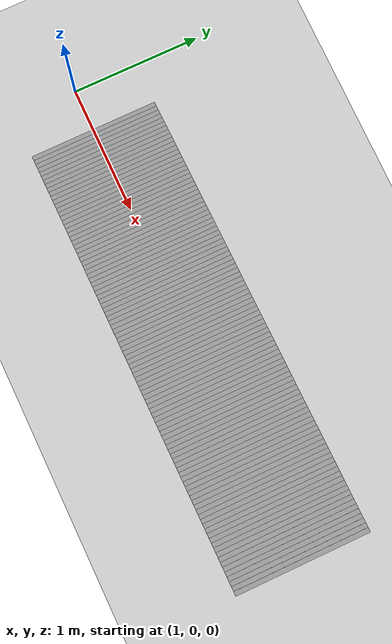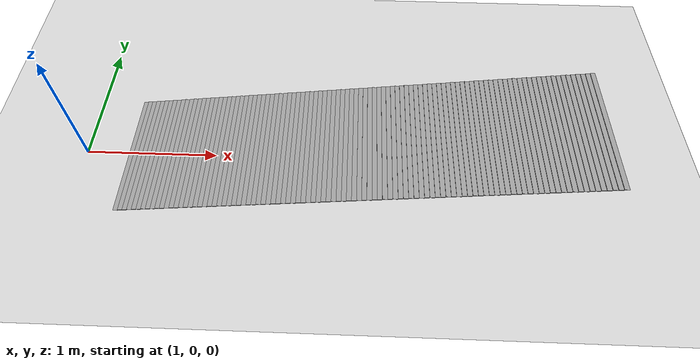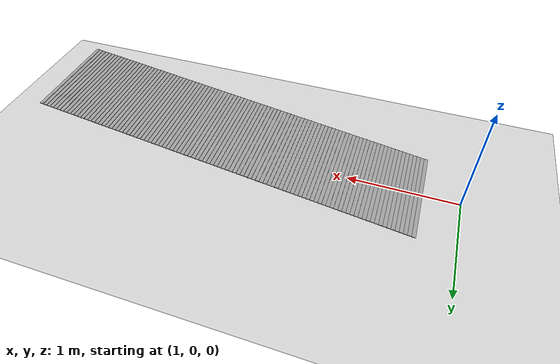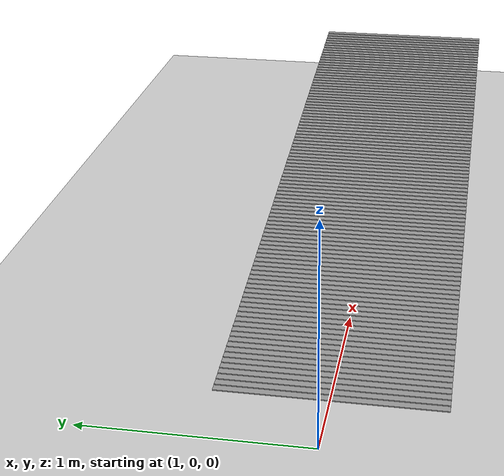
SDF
<sdf version="1.7">
 <world name="default">
  <light name="sun" type="directional">
   <pose>0 0 10 0 -0 0</pose>
   <diffuse>0.8 0.8 0.8 1</diffuse>
   <specular>0.2 0.2 0.2 1</specular>
   <attenuation>
    <range>1000</range>
    <constant>0.9</constant>
    <linear>0.01</linear>
    <quadratic>0.001</quadratic>
   </attenuation>
   <direction>-0.5 0.1 -0.9</direction>
   <spot><inner_angle>0</inner_angle><outer_angle>0</outer_angle><falloff>0</falloff></spot>
  </light>
  <model name="ground_plane">
   <static>1</static>
   <link name="link">
    <collision name="collision">
     <geometry><plane><normal>0 0 1</normal><size>100 100</size></plane></geometry>
     <surface><friction><ode><mu>100</mu><mu2>50</mu2></ode></friction></surface>
    </collision>
    <visual name="visual">
     <cast_shadows>0</cast_shadows>
     <geometry><plane><normal>0 0 1</normal><size>100 100</size></plane></geometry>
     <material>
      <script><uri>file://media/materials/scripts/gazebo.material</uri><name>Gazebo/Grey</name></script>
     </material>
    </visual>
   </link>
  </model>
  <gravity>0 0 -9.8</gravity>
  <magnetic_field>6e-06 2.3e-05 -4.2e-05</magnetic_field>
  <atmosphere type="adiabatic"/>
  <physics type="ode">
   <max_step_size>0.001</max_step_size>
   <real_time_factor>1</real_time_factor>
   <real_time_update_rate>1000</real_time_update_rate>
  </physics>
  <scene><ambient>0.4 0.4 0.4 1</ambient><background>0.7 0.7 0.7 1</background><shadows>1</shadows></scene>
  <audio><device>default</device></audio>
  <spherical_coordinates>
   <surface_model>EARTH_WGS84</surface_model>
   <latitude_deg>0</latitude_deg>
   <longitude_deg>0</longitude_deg>
   <elevation>0</elevation>
   <heading_deg>0</heading_deg>
  </spherical_coordinates>
  <model name="stair">
   <pose>2.41167 0.002545 0 0 -0 0</pose>
   <link name="Stairs_1">
    <visual name="Stairs_1_Visual_0">
     <pose>-1.07082 -0 0.0025 0 -0 1.5708</pose>
     <geometry><box><size>1 0.035 0.005</size></box></geometry>
     <material>
      <script><uri>file://media/materials/scripts/gazebo.material</uri><name>Gazebo/Grey</name></script>
      <ambient>1 1 1 1</ambient>
     </material>
     <meta><layer>0</layer></meta>
    </visual>
    <collision name="Stairs_1_Collision_0">
     <geometry><box><size>1 0.035 0.005</size></box></geometry>
     <pose>-1.07082 -0 0.0025 0 -0 1.5708</pose>
    </collision>
    <visual name="Stairs_1_Visual_1">
     <pose>-1.03582 -0 0.0075 0 -0 1.5708</pose>
     <geometry><box><size>1 0.035 0.005</size></box></geometry>
     <material>
      <script><uri>file://media/materials/scripts/gazebo.material</uri><name>Gazebo/Grey</name></script>
      <ambient>1 1 1 1</ambient>
     </material>
     <meta><layer>0</layer></meta>
    </visual>
    <collision name="Stairs_1_Collision_1">
     <geometry><box><size>1 0.035 0.005</size></box></geometry>
     <pose>-1.03582 -0 0.0075 0 -0 1.5708</pose>
    </collision>
    <visual name="Stairs_1_Visual_2">
     <pose>-1.00083 -0 0.0125 0 -0 1.5708</pose>
     <geometry><box><size>1 0.035 0.005</size></box></geometry>
     <material>
      <script><uri>file://media/materials/scripts/gazebo.material</uri><name>Gazebo/Grey</name></script>
      <ambient>1 1 1 1</ambient>
     </material>
     <meta><layer>0</layer></meta>
    </visual>
    <collision name="Stairs_1_Collision_2">
     <geometry><box><size>1 0.035 0.005</size></box></geometry>
     <pose>-1.00083 -0 0.0125 0 -0 1.5708</pose>
    </collision>
    <visual name="Stairs_1_Visual_3">
     <pose>-0.965825 -0 0.0175 0 -0 1.5708</pose>
     <geometry><box><size>1 0.035 0.005</size></box></geometry>
     <material>
      <script><uri>file://media/materials/scripts/gazebo.material</uri><name>Gazebo/Grey</name></script>
      <ambient>1 1 1 1</ambient>
     </material>
     <meta><layer>0</layer></meta>
    </visual>
    <collision name="Stairs_1_Collision_3">
     <geometry><box><size>1 0.035 0.005</size></box></geometry>
     <pose>-0.965825 -0 0.0175 0 -0 1.5708</pose>
    </collision>
    <visual name="Stairs_1_Visual_4">
     <pose>-0.930825 -0 0.0225 0 -0 1.5708</pose>
     <geometry><box><size>1 0.035 0.005</size></box></geometry>
     <material>
      <script><uri>file://media/materials/scripts/gazebo.material</uri><name>Gazebo/Grey</name></script>
      <ambient>1 1 1 1</ambient>
     </material>
     <meta><layer>0</layer></meta>
    </visual>
    <collision name="Stairs_1_Collision_4">
     <geometry><box><size>1 0.035 0.005</size></box></geometry>
     <pose>-0.930825 -0 0.0225 0 -0 1.5708</pose>
    </collision>
    <visual name="Stairs_1_Visual_5">
     <pose>-0.895825 -0 0.0275 0 -0 1.5708</pose>
     <geometry><box><size>1 0.035 0.005</size></box></geometry>
     <material>
      <script><uri>file://media/materials/scripts/gazebo.material</uri><name>Gazebo/Grey</name></script>
      <ambient>1 1 1 1</ambient>
     </material>
     <meta><layer>0</layer></meta>
    </visual>
    <collision name="Stairs_1_Collision_5">
     <geometry><box><size>1 0.035 0.005</size></box></geometry>
     <pose>-0.895825 -0 0.0275 0 -0 1.5708</pose>
    </collision>
    <visual name="Stairs_1_Visual_6">
     <pose>-0.860825 -0 0.0325 0 -0 1.5708</pose>
     <geometry><box><size>1 0.035 0.005</size></box></geometry>
     <material>
      <script><uri>file://media/materials/scripts/gazebo.material</uri><name>Gazebo/Grey</name></script>
      <ambient>1 1 1 1</ambient>
     </material>
     <meta><layer>0</layer></meta>
    </visual>
    <collision name="Stairs_1_Collision_6">
     <geometry><box><size>1 0.035 0.005</size></box></geometry>
     <pose>-0.860825 -0 0.0325 0 -0 1.5708</pose>
    </collision>
    <visual name="Stairs_1_Visual_7">
     <pose>-0.825825 -0 0.0375 0 -0 1.5708</pose>
     <geometry><box><size>1 0.035 0.005</size></box></geometry>
     <material>
      <script><uri>file://media/materials/scripts/gazebo.material</uri><name>Gazebo/Grey</name></script>
      <ambient>1 1 1 1</ambient>
     </material>
     <meta><layer>0</layer></meta>
    </visual>
    <collision name="Stairs_1_Collision_7">
     <geometry><box><size>1 0.035 0.005</size></box></geometry>
     <pose>-0.825825 -0 0.0375 0 -0 1.5708</pose>
    </collision>
    <visual name="Stairs_1_Visual_8">
     <pose>-0.790825 -0 0.0425 0 -0 1.5708</pose>
     <geometry><box><size>1 0.035 0.005</size></box></geometry>
     <material>
      <script><uri>file://media/materials/scripts/gazebo.material</uri><name>Gazebo/Grey</name></script>
      <ambient>1 1 1 1</ambient>
     </material>
     <meta><layer>0</layer></meta>
    </visual>
    <collision name="Stairs_1_Collision_8">
     <geometry><box><size>1 0.035 0.005</size></box></geometry>
     <pose>-0.790825 -0 0.0425 0 -0 1.5708</pose>
    </collision>
    <visual name="Stairs_1_Visual_9">
     <pose>-0.755825 -0 0.0475 0 -0 1.5708</pose>
     <geometry><box><size>1 0.035 0.005</size></box></geometry>
     <material>
      <script><uri>file://media/materials/scripts/gazebo.material</uri><name>Gazebo/Grey</name></script>
      <ambient>1 1 1 1</ambient>
     </material>
     <meta><layer>0</layer></meta>
    </visual>
    <collision name="Stairs_1_Collision_9">
     <geometry><box><size>1 0.035 0.005</size></box></geometry>
     <pose>-0.755825 -0 0.0475 0 -0 1.5708</pose>
    </collision>
    <visual name="Stairs_1_Visual_10">
     <pose>-0.720825 -0 0.0525 0 -0 1.5708</pose>
     <geometry><box><size>1 0.035 0.005</size></box></geometry>
     <material>
      <script><uri>file://media/materials/scripts/gazebo.material</uri><name>Gazebo/Grey</name></script>
      <ambient>1 1 1 1</ambient>
     </material>
     <meta><layer>0</layer></meta>
    </visual>
    <collision name="Stairs_1_Collision_10">
     <geometry><box><size>1 0.035 0.005</size></box></geometry>
     <pose>-0.720825 -0 0.0525 0 -0 1.5708</pose>
    </collision>
    <visual name="Stairs_1_Visual_11">
     <pose>-0.685825 -0 0.0575 0 -0 1.5708</pose>
     <geometry><box><size>1 0.035 0.005</size></box></geometry>
     <material>
      <script><uri>file://media/materials/scripts/gazebo.material</uri><name>Gazebo/Grey</name></script>
      <ambient>1 1 1 1</ambient>
     </material>
     <meta><layer>0</layer></meta>
    </visual>
    <collision name="Stairs_1_Collision_11">
     <geometry><box><size>1 0.035 0.005</size></box></geometry>
     <pose>-0.685825 -0 0.0575 0 -0 1.5708</pose>
    </collision>
    <visual name="Stairs_1_Visual_12">
     <pose>-0.650825 -0 0.0625 0 -0 1.5708</pose>
     <geometry><box><size>1 0.035 0.005</size></box></geometry>
     <material>
      <script><uri>file://media/materials/scripts/gazebo.material</uri><name>Gazebo/Grey</name></script>
      <ambient>1 1 1 1</ambient>
     </material>
     <meta><layer>0</layer></meta>
    </visual>
    <collision name="Stairs_1_Collision_12">
     <geometry><box><size>1 0.035 0.005</size></box></geometry>
     <pose>-0.650825 -0 0.0625 0 -0 1.5708</pose>
    </collision>
    <visual name="Stairs_1_Visual_13">
     <pose>-0.615825 -0 0.0675 0 -0 1.5708</pose>
     <geometry><box><size>1 0.035 0.005</size></box></geometry>
     <material>
      <script><uri>file://media/materials/scripts/gazebo.material</uri><name>Gazebo/Grey</name></script>
      <ambient>1 1 1 1</ambient>
     </material>
     <meta><layer>0</layer></meta>
    </visual>
    <collision name="Stairs_1_Collision_13">
     <geometry><box><size>1 0.035 0.005</size></box></geometry>
     <pose>-0.615825 -0 0.0675 0 -0 1.5708</pose>
    </collision>
    <visual name="Stairs_1_Visual_14">
     <pose>-0.580825 -0 0.0725 0 -0 1.5708</pose>
     <geometry><box><size>1 0.035 0.005</size></box></geometry>
     <material>
      <script><uri>file://media/materials/scripts/gazebo.material</uri><name>Gazebo/Grey</name></script>
      <ambient>1 1 1 1</ambient>
     </material>
     <meta><layer>0</layer></meta>
    </visual>
    <collision name="Stairs_1_Collision_14">
     <geometry><box><size>1 0.035 0.005</size></box></geometry>
     <pose>-0.580825 -0 0.0725 0 -0 1.5708</pose>
    </collision>
    <visual name="Stairs_1_Visual_15">
     <pose>-0.545825 -0 0.0775 0 -0 1.5708</pose>
     <geometry><box><size>1 0.035 0.005</size></box></geometry>
     <material>
      <script><uri>file://media/materials/scripts/gazebo.material</uri><name>Gazebo/Grey</name></script>
      <ambient>1 1 1 1</ambient>
     </material>
     <meta><layer>0</layer></meta>
    </visual>
    <collision name="Stairs_1_Collision_15">
     <geometry><box><size>1 0.035 0.005</size></box></geometry>
     <pose>-0.545825 -0 0.0775 0 -0 1.5708</pose>
    </collision>
    <visual name="Stairs_1_Visual_16">
     <pose>-0.510825 -0 0.0825 0 -0 1.5708</pose>
     <geometry><box><size>1 0.035 0.005</size></box></geometry>
     <material>
      <script><uri>file://media/materials/scripts/gazebo.material</uri><name>Gazebo/Grey</name></script>
      <ambient>1 1 1 1</ambient>
     </material>
     <meta><layer>0</layer></meta>
    </visual>
    <collision name="Stairs_1_Collision_16">
     <geometry><box><size>1 0.035 0.005</size></box></geometry>
     <pose>-0.510825 -0 0.0825 0 -0 1.5708</pose>
    </collision>
    <visual name="Stairs_1_Visual_17">
     <pose>-0.475825 -0 0.0875 0 -0 1.5708</pose>
     <geometry><box><size>1 0.035 0.005</size></box></geometry>
     <material>
      <script><uri>file://media/materials/scripts/gazebo.material</uri><name>Gazebo/Grey</name></script>
      <ambient>1 1 1 1</ambient>
     </material>
     <meta><layer>0</layer></meta>
    </visual>
    <collision name="Stairs_1_Collision_17">
     <geometry><box><size>1 0.035 0.005</size></box></geometry>
     <pose>-0.475825 -0 0.0875 0 -0 1.5708</pose>
    </collision>
    <visual name="Stairs_1_Visual_18">
     <pose>-0.440825 -0 0.0925 0 -0 1.5708</pose>
     <geometry><box><size>1 0.035 0.005</size></box></geometry>
     <material>
      <script><uri>file://media/materials/scripts/gazebo.material</uri><name>Gazebo/Grey</name></script>
      <ambient>1 1 1 1</ambient>
     </material>
     <meta><layer>0</layer></meta>
    </visual>
    <collision name="Stairs_1_Collision_18">
     <geometry><box><size>1 0.035 0.005</size></box></geometry>
     <pose>-0.440825 -0 0.0925 0 -0 1.5708</pose>
    </collision>
    <visual name="Stairs_1_Visual_19">
     <pose>-0.405825 -0 0.0975 0 -0 1.5708</pose>
     <geometry><box><size>1 0.035 0.005</size></box></geometry>
     <material>
      <script><uri>file://media/materials/scripts/gazebo.material</uri><name>Gazebo/Grey</name></script>
      <ambient>1 1 1 1</ambient>
     </material>
     <meta><layer>0</layer></meta>
    </visual>
    <collision name="Stairs_1_Collision_19">
     <geometry><box><size>1 0.035 0.005</size></box></geometry>
     <pose>-0.405825 -0 0.0975 0 -0 1.5708</pose>
    </collision>
    <visual name="Stairs_1_Visual_20">
     <pose>-0.370825 -0 0.1025 0 -0 1.5708</pose>
     <geometry><box><size>1 0.035 0.005</size></box></geometry>
     <material>
      <script><uri>file://media/materials/scripts/gazebo.material</uri><name>Gazebo/Grey</name></script>
      <ambient>1 1 1 1</ambient>
     </material>
     <meta><layer>0</layer></meta>
    </visual>
    <collision name="Stairs_1_Collision_20">
     <geometry><box><size>1 0.035 0.005</size></box></geometry>
     <pose>-0.370825 -0 0.1025 0 -0 1.5708</pose>
    </collision>
    <visual name="Stairs_1_Visual_21">
     <pose>-0.335825 -0 0.1075 0 -0 1.5708</pose>
     <geometry><box><size>1 0.035 0.005</size></box></geometry>
     <material>
      <script><uri>file://media/materials/scripts/gazebo.material</uri><name>Gazebo/Grey</name></script>
      <ambient>1 1 1 1</ambient>
     </material>
     <meta><layer>0</layer></meta>
    </visual>
    <collision name="Stairs_1_Collision_21">
     <geometry><box><size>1 0.035 0.005</size></box></geometry>
     <pose>-0.335825 -0 0.1075 0 -0 1.5708</pose>
    </collision>
    <visual name="Stairs_1_Visual_22">
     <pose>-0.300825 -0 0.1125 0 -0 1.5708</pose>
     <geometry><box><size>1 0.035 0.005</size></box></geometry>
     <material>
      <script><uri>file://media/materials/scripts/gazebo.material</uri><name>Gazebo/Grey</name></script>
      <ambient>1 1 1 1</ambient>
     </material>
     <meta><layer>0</layer></meta>
    </visual>
    <collision name="Stairs_1_Collision_22">
     <geometry><box><size>1 0.035 0.005</size></box></geometry>
     <pose>-0.300825 -0 0.1125 0 -0 1.5708</pose>
    </collision>
    <visual name="Stairs_1_Visual_23">
     <pose>-0.265825 -0 0.1175 0 -0 1.5708</pose>
     <geometry><box><size>1 0.035 0.005</size></box></geometry>
     <material>
      <script><uri>file://media/materials/scripts/gazebo.material</uri><name>Gazebo/Grey</name></script>
      <ambient>1 1 1 1</ambient>
     </material>
     <meta><layer>0</layer></meta>
    </visual>
    <collision name="Stairs_1_Collision_23">
     <geometry><box><size>1 0.035 0.005</size></box></geometry>
     <pose>-0.265825 -0 0.1175 0 -0 1.5708</pose>
    </collision>
    <visual name="Stairs_1_Visual_24">
     <pose>-0.230825 -0 0.1225 0 -0 1.5708</pose>
     <geometry><box><size>1 0.035 0.005</size></box></geometry>
     <material>
      <script><uri>file://media/materials/scripts/gazebo.material</uri><name>Gazebo/Grey</name></script>
      <ambient>1 1 1 1</ambient>
     </material>
     <meta><layer>0</layer></meta>
    </visual>
    <collision name="Stairs_1_Collision_24">
     <geometry><box><size>1 0.035 0.005</size></box></geometry>
     <pose>-0.230825 -0 0.1225 0 -0 1.5708</pose>
    </collision>
    <visual name="Stairs_1_Visual_25">
     <pose>-0.195825 -0 0.1275 0 -0 1.5708</pose>
     <geometry><box><size>1 0.035 0.005</size></box></geometry>
     <material>
      <script><uri>file://media/materials/scripts/gazebo.material</uri><name>Gazebo/Grey</name></script>
      <ambient>1 1 1 1</ambient>
     </material>
     <meta><layer>0</layer></meta>
    </visual>
    <collision name="Stairs_1_Collision_25">
     <geometry><box><size>1 0.035 0.005</size></box></geometry>
     <pose>-0.195825 -0 0.1275 0 -0 1.5708</pose>
    </collision>
    <visual name="Stairs_1_Visual_26">
     <pose>-0.160825 -0 0.1325 0 -0 1.5708</pose>
     <geometry><box><size>1 0.035 0.005</size></box></geometry>
     <material>
      <script><uri>file://media/materials/scripts/gazebo.material</uri><name>Gazebo/Grey</name></script>
      <ambient>1 1 1 1</ambient>
     </material>
     <meta><layer>0</layer></meta>
    </visual>
    <collision name="Stairs_1_Collision_26">
     <geometry><box><size>1 0.035 0.005</size></box></geometry>
     <pose>-0.160825 -0 0.1325 0 -0 1.5708</pose>
    </collision>
    <visual name="Stairs_1_Visual_27">
     <pose>-0.125825 -0 0.1375 0 -0 1.5708</pose>
     <geometry><box><size>1 0.035 0.005</size></box></geometry>
     <material>
      <script><uri>file://media/materials/scripts/gazebo.material</uri><name>Gazebo/Grey</name></script>
      <ambient>1 1 1 1</ambient>
     </material>
     <meta><layer>0</layer></meta>
    </visual>
    <collision name="Stairs_1_Collision_27">
     <geometry><box><size>1 0.035 0.005</size></box></geometry>
     <pose>-0.125825 -0 0.1375 0 -0 1.5708</pose>
    </collision>
    <visual name="Stairs_1_Visual_28">
     <pose>-0.090825 -0 0.1425 0 -0 1.5708</pose>
     <geometry><box><size>1 0.035 0.005</size></box></geometry>
     <material>
      <script><uri>file://media/materials/scripts/gazebo.material</uri><name>Gazebo/Grey</name></script>
      <ambient>1 1 1 1</ambient>
     </material>
     <meta><layer>0</layer></meta>
    </visual>
    <collision name="Stairs_1_Collision_28">
     <geometry><box><size>1 0.035 0.005</size></box></geometry>
     <pose>-0.090825 -0 0.1425 0 -0 1.5708</pose>
    </collision>
    <visual name="Stairs_1_Visual_29">
     <pose>-0.055825 -0 0.1475 0 -0 1.5708</pose>
     <geometry><box><size>1 0.035 0.005</size></box></geometry>
     <material>
      <script><uri>file://media/materials/scripts/gazebo.material</uri><name>Gazebo/Grey</name></script>
      <ambient>1 1 1 1</ambient>
     </material>
     <meta><layer>0</layer></meta>
    </visual>
    <collision name="Stairs_1_Collision_29">
     <geometry><box><size>1 0.035 0.005</size></box></geometry>
     <pose>-0.055825 -0 0.1475 0 -0 1.5708</pose>
    </collision>
    <visual name="Stairs_1_Visual_30">
     <pose>-0.020825 -0 0.1525 0 -0 1.5708</pose>
     <geometry><box><size>1 0.035 0.005</size></box></geometry>
     <material>
      <script><uri>file://media/materials/scripts/gazebo.material</uri><name>Gazebo/Grey</name></script>
      <ambient>1 1 1 1</ambient>
     </material>
     <meta><layer>0</layer></meta>
    </visual>
    <collision name="Stairs_1_Collision_30">
     <geometry><box><size>1 0.035 0.005</size></box></geometry>
     <pose>-0.020825 -0 0.1525 0 -0 1.5708</pose>
    </collision>
    <visual name="Stairs_1_Visual_31">
     <pose>0.014175 -0 0.1575 0 -0 1.5708</pose>
     <geometry><box><size>1 0.035 0.005</size></box></geometry>
     <material>
      <script><uri>file://media/materials/scripts/gazebo.material</uri><name>Gazebo/Grey</name></script>
      <ambient>1 1 1 1</ambient>
     </material>
     <meta><layer>0</layer></meta>
    </visual>
    <collision name="Stairs_1_Collision_31">
     <geometry><box><size>1 0.035 0.005</size></box></geometry>
     <pose>0.014175 -0 0.1575 0 -0 1.5708</pose>
    </collision>
    <visual name="Stairs_1_Visual_32">
     <pose>0.049175 -0 0.1625 0 -0 1.5708</pose>
     <geometry><box><size>1 0.035 0.005</size></box></geometry>
     <material>
      <script><uri>file://media/materials/scripts/gazebo.material</uri><name>Gazebo/Grey</name></script>
      <ambient>1 1 1 1</ambient>
     </material>
     <meta><layer>0</layer></meta>
    </visual>
    <collision name="Stairs_1_Collision_32">
     <geometry><box><size>1 0.035 0.005</size></box></geometry>
     <pose>0.049175 -0 0.1625 0 -0 1.5708</pose>
    </collision>
    <visual name="Stairs_1_Visual_33">
     <pose>0.084175 -0 0.1675 0 -0 1.5708</pose>
     <geometry><box><size>1 0.035 0.005</size></box></geometry>
     <material>
      <script><uri>file://media/materials/scripts/gazebo.material</uri><name>Gazebo/Grey</name></script>
      <ambient>1 1 1 1</ambient>
     </material>
     <meta><layer>0</layer></meta>
    </visual>
    <collision name="Stairs_1_Collision_33">
     <geometry><box><size>1 0.035 0.005</size></box></geometry>
     <pose>0.084175 -0 0.1675 0 -0 1.5708</pose>
    </collision>
    <visual name="Stairs_1_Visual_34">
     <pose>0.119175 -0 0.1725 0 -0 1.5708</pose>
     <geometry><box><size>1 0.035 0.005</size></box></geometry>
     <material>
      <script><uri>file://media/materials/scripts/gazebo.material</uri><name>Gazebo/Grey</name></script>
      <ambient>1 1 1 1</ambient>
     </material>
     <meta><layer>0</layer></meta>
    </visual>
    <collision name="Stairs_1_Collision_34">
     <geometry><box><size>1 0.035 0.005</size></box></geometry>
     <pose>0.119175 -0 0.1725 0 -0 1.5708</pose>
    </collision>
    <visual name="Stairs_1_Visual_35">
     <pose>0.154175 -0 0.1775 0 -0 1.5708</pose>
     <geometry><box><size>1 0.035 0.005</size></box></geometry>
     <material>
      <script><uri>file://media/materials/scripts/gazebo.material</uri><name>Gazebo/Grey</name></script>
      <ambient>1 1 1 1</ambient>
     </material>
     <meta><layer>0</layer></meta>
    </visual>
    <collision name="Stairs_1_Collision_35">
     <geometry><box><size>1 0.035 0.005</size></box></geometry>
     <pose>0.154175 -0 0.1775 0 -0 1.5708</pose>
    </collision>
    <visual name="Stairs_1_Visual_36">
     <pose>0.189175 -0 0.1825 0 -0 1.5708</pose>
     <geometry><box><size>1 0.035 0.005</size></box></geometry>
     <material>
      <script><uri>file://media/materials/scripts/gazebo.material</uri><name>Gazebo/Grey</name></script>
      <ambient>1 1 1 1</ambient>
     </material>
     <meta><layer>0</layer></meta>
    </visual>
    <collision name="Stairs_1_Collision_36">
     <geometry><box><size>1 0.035 0.005</size></box></geometry>
     <pose>0.189175 -0 0.1825 0 -0 1.5708</pose>
    </collision>
    <visual name="Stairs_1_Visual_37">
     <pose>0.224175 -0 0.1875 0 -0 1.5708</pose>
     <geometry><box><size>1 0.035 0.005</size></box></geometry>
     <material>
      <script><uri>file://media/materials/scripts/gazebo.material</uri><name>Gazebo/Grey</name></script>
      <ambient>1 1 1 1</ambient>
     </material>
     <meta><layer>0</layer></meta>
    </visual>
    <collision name="Stairs_1_Collision_37">
     <geometry><box><size>1 0.035 0.005</size></box></geometry>
     <pose>0.224175 -0 0.1875 0 -0 1.5708</pose>
    </collision>
    <visual name="Stairs_1_Visual_38">
     <pose>0.259175 -0 0.1925 0 -0 1.5708</pose>
     <geometry><box><size>1 0.035 0.005</size></box></geometry>
     <material>
      <script><uri>file://media/materials/scripts/gazebo.material</uri><name>Gazebo/Grey</name></script>
      <ambient>1 1 1 1</ambient>
     </material>
     <meta><layer>0</layer></meta>
    </visual>
    <collision name="Stairs_1_Collision_38">
     <geometry><box><size>1 0.035 0.005</size></box></geometry>
     <pose>0.259175 -0 0.1925 0 -0 1.5708</pose>
    </collision>
    <visual name="Stairs_1_Visual_39">
     <pose>0.294175 -0 0.1975 0 -0 1.5708</pose>
     <geometry><box><size>1 0.035 0.005</size></box></geometry>
     <material>
      <script><uri>file://media/materials/scripts/gazebo.material</uri><name>Gazebo/Grey</name></script>
      <ambient>1 1 1 1</ambient>
     </material>
     <meta><layer>0</layer></meta>
    </visual>
    <collision name="Stairs_1_Collision_39">
     <geometry><box><size>1 0.035 0.005</size></box></geometry>
     <pose>0.294175 -0 0.1975 0 -0 1.5708</pose>
    </collision>
    <visual name="Stairs_1_Visual_40">
     <pose>0.329175 -0 0.2025 0 -0 1.5708</pose>
     <geometry><box><size>1 0.035 0.005</size></box></geometry>
     <material>
      <script><uri>file://media/materials/scripts/gazebo.material</uri><name>Gazebo/Grey</name></script>
      <ambient>1 1 1 1</ambient>
     </material>
     <meta><layer>0</layer></meta>
    </visual>
    <collision name="Stairs_1_Collision_40">
     <geometry><box><size>1 0.035 0.005</size></box></geometry>
     <pose>0.329175 -0 0.2025 0 -0 1.5708</pose>
    </collision>
    <visual name="Stairs_1_Visual_41">
     <pose>0.364175 -0 0.2075 0 -0 1.5708</pose>
     <geometry><box><size>1 0.035 0.005</size></box></geometry>
     <material>
      <script><uri>file://media/materials/scripts/gazebo.material</uri><name>Gazebo/Grey</name></script>
      <ambient>1 1 1 1</ambient>
     </material>
     <meta><layer>0</layer></meta>
    </visual>
    <collision name="Stairs_1_Collision_41">
     <geometry><box><size>1 0.035 0.005</size></box></geometry>
     <pose>0.364175 -0 0.2075 0 -0 1.5708</pose>
    </collision>
    <visual name="Stairs_1_Visual_42">
     <pose>0.399175 -0 0.2125 0 -0 1.5708</pose>
     <geometry><box><size>1 0.035 0.005</size></box></geometry>
     <material>
      <script><uri>file://media/materials/scripts/gazebo.material</uri><name>Gazebo/Grey</name></script>
      <ambient>1 1 1 1</ambient>
     </material>
     <meta><layer>0</layer></meta>
    </visual>
    <collision name="Stairs_1_Collision_42">
     <geometry><box><size>1 0.035 0.005</size></box></geometry>
     <pose>0.399175 -0 0.2125 0 -0 1.5708</pose>
    </collision>
    <visual name="Stairs_1_Visual_43">
     <pose>0.434175 -0 0.2175 0 -0 1.5708</pose>
     <geometry><box><size>1 0.035 0.005</size></box></geometry>
     <material>
      <script><uri>file://media/materials/scripts/gazebo.material</uri><name>Gazebo/Grey</name></script>
      <ambient>1 1 1 1</ambient>
     </material>
     <meta><layer>0</layer></meta>
    </visual>
    <collision name="Stairs_1_Collision_43">
     <geometry><box><size>1 0.035 0.005</size></box></geometry>
     <pose>0.434175 -0 0.2175 0 -0 1.5708</pose>
    </collision>
    <visual name="Stairs_1_Visual_44">
     <pose>0.469175 -0 0.2225 0 -0 1.5708</pose>
     <geometry><box><size>1 0.035 0.005</size></box></geometry>
     <material>
      <script><uri>file://media/materials/scripts/gazebo.material</uri><name>Gazebo/Grey</name></script>
      <ambient>1 1 1 1</ambient>
     </material>
     <meta><layer>0</layer></meta>
    </visual>
    <collision name="Stairs_1_Collision_44">
     <geometry><box><size>1 0.035 0.005</size></box></geometry>
     <pose>0.469175 -0 0.2225 0 -0 1.5708</pose>
    </collision>
    <visual name="Stairs_1_Visual_45">
     <pose>0.504175 -0 0.2275 0 -0 1.5708</pose>
     <geometry><box><size>1 0.035 0.005</size></box></geometry>
     <material>
      <script><uri>file://media/materials/scripts/gazebo.material</uri><name>Gazebo/Grey</name></script>
      <ambient>1 1 1 1</ambient>
     </material>
     <meta><layer>0</layer></meta>
    </visual>
    <collision name="Stairs_1_Collision_45">
     <geometry><box><size>1 0.035 0.005</size></box></geometry>
     <pose>0.504175 -0 0.2275 0 -0 1.5708</pose>
    </collision>
    <visual name="Stairs_1_Visual_46">
     <pose>0.539175 -0 0.2325 0 -0 1.5708</pose>
     <geometry><box><size>1 0.035 0.005</size></box></geometry>
     <material>
      <script><uri>file://media/materials/scripts/gazebo.material</uri><name>Gazebo/Grey</name></script>
      <ambient>1 1 1 1</ambient>
     </material>
     <meta><layer>0</layer></meta>
    </visual>
    <collision name="Stairs_1_Collision_46">
     <geometry><box><size>1 0.035 0.005</size></box></geometry>
     <pose>0.539175 -0 0.2325 0 -0 1.5708</pose>
    </collision>
    <visual name="Stairs_1_Visual_47">
     <pose>0.574175 -0 0.2375 0 -0 1.5708</pose>
     <geometry><box><size>1 0.035 0.005</size></box></geometry>
     <material>
      <script><uri>file://media/materials/scripts/gazebo.material</uri><name>Gazebo/Grey</name></script>
      <ambient>1 1 1 1</ambient>
     </material>
     <meta><layer>0</layer></meta>
    </visual>
    <collision name="Stairs_1_Collision_47">
     <geometry><box><size>1 0.035 0.005</size></box></geometry>
     <pose>0.574175 -0 0.2375 0 -0 1.5708</pose>
    </collision>
    <visual name="Stairs_1_Visual_48">
     <pose>0.609175 -0 0.2425 0 -0 1.5708</pose>
     <geometry><box><size>1 0.035 0.005</size></box></geometry>
     <material>
      <script><uri>file://media/materials/scripts/gazebo.material</uri><name>Gazebo/Grey</name></script>
      <ambient>1 1 1 1</ambient>
     </material>
     <meta><layer>0</layer></meta>
    </visual>
    <collision name="Stairs_1_Collision_48">
     <geometry><box><size>1 0.035 0.005</size></box></geometry>
     <pose>0.609175 -0 0.2425 0 -0 1.5708</pose>
    </collision>
    <visual name="Stairs_1_Visual_49">
     <pose>0.644175 -0 0.2475 0 -0 1.5708</pose>
     <geometry><box><size>1 0.035 0.005</size></box></geometry>
     <material>
      <script><uri>file://media/materials/scripts/gazebo.material</uri><name>Gazebo/Grey</name></script>
      <ambient>1 1 1 1</ambient>
     </material>
     <meta><layer>0</layer></meta>
    </visual>
    <collision name="Stairs_1_Collision_49">
     <geometry><box><size>1 0.035 0.005</size></box></geometry>
     <pose>0.644175 -0 0.2475 0 -0 1.5708</pose>
    </collision>
    <visual name="Stairs_1_Visual_50">
     <pose>0.679175 0 0.2525 0 -0 1.5708</pose>
     <geometry><box><size>1 0.035 0.005</size></box></geometry>
     <material>
      <script><uri>file://media/materials/scripts/gazebo.material</uri><name>Gazebo/Grey</name></script>
      <ambient>1 1 1 1</ambient>
     </material>
     <meta><layer>0</layer></meta>
    </visual>
    <collision name="Stairs_1_Collision_50">
     <geometry><box><size>1 0.035 0.005</size></box></geometry>
     <pose>0.679175 0 0.2525 0 -0 1.5708</pose>
    </collision>
    <visual name="Stairs_1_Visual_51">
     <pose>0.714175 0 0.2575 0 -0 1.5708</pose>
     <geometry><box><size>1 0.035 0.005</size></box></geometry>
     <material>
      <script><uri>file://media/materials/scripts/gazebo.material</uri><name>Gazebo/Grey</name></script>
      <ambient>1 1 1 1</ambient>
     </material>
     <meta><layer>0</layer></meta>
    </visual>
    <collision name="Stairs_1_Collision_51">
     <geometry><box><size>1 0.035 0.005</size></box></geometry>
     <pose>0.714175 0 0.2575 0 -0 1.5708</pose>
    </collision>
    <visual name="Stairs_1_Visual_52">
     <pose>0.749175 0 0.2625 0 -0 1.5708</pose>
     <geometry><box><size>1 0.035 0.005</size></box></geometry>
     <material>
      <script><uri>file://media/materials/scripts/gazebo.material</uri><name>Gazebo/Grey</name></script>
      <ambient>1 1 1 1</ambient>
     </material>
     <meta><layer>0</layer></meta>
    </visual>
    <collision name="Stairs_1_Collision_52">
     <geometry><box><size>1 0.035 0.005</size></box></geometry>
     <pose>0.749175 0 0.2625 0 -0 1.5708</pose>
    </collision>
    <visual name="Stairs_1_Visual_53">
     <pose>0.784175 0 0.2675 0 -0 1.5708</pose>
     <geometry><box><size>1 0.035 0.005</size></box></geometry>
     <material>
      <script><uri>file://media/materials/scripts/gazebo.material</uri><name>Gazebo/Grey</name></script>
      <ambient>1 1 1 1</ambient>
     </material>
     <meta><layer>0</layer></meta>
    </visual>
    <collision name="Stairs_1_Collision_53">
     <geometry><box><size>1 0.035 0.005</size></box></geometry>
     <pose>0.784175 0 0.2675 0 -0 1.5708</pose>
    </collision>
    <visual name="Stairs_1_Visual_54">
     <pose>0.819175 0 0.2725 0 -0 1.5708</pose>
     <geometry><box><size>1 0.035 0.005</size></box></geometry>
     <material>
      <script><uri>file://media/materials/scripts/gazebo.material</uri><name>Gazebo/Grey</name></script>
      <ambient>1 1 1 1</ambient>
     </material>
     <meta><layer>0</layer></meta>
    </visual>
    <collision name="Stairs_1_Collision_54">
     <geometry><box><size>1 0.035 0.005</size></box></geometry>
     <pose>0.819175 0 0.2725 0 -0 1.5708</pose>
    </collision>
    <visual name="Stairs_1_Visual_55">
     <pose>0.854175 0 0.2775 0 -0 1.5708</pose>
     <geometry><box><size>1 0.035 0.005</size></box></geometry>
     <material>
      <script><uri>file://media/materials/scripts/gazebo.material</uri><name>Gazebo/Grey</name></script>
      <ambient>1 1 1 1</ambient>
     </material>
     <meta><layer>0</layer></meta>
    </visual>
    <collision name="Stairs_1_Collision_55">
     <geometry><box><size>1 0.035 0.005</size></box></geometry>
     <pose>0.854175 0 0.2775 0 -0 1.5708</pose>
    </collision>
    <visual name="Stairs_1_Visual_56">
     <pose>0.889175 0 0.2825 0 -0 1.5708</pose>
     <geometry><box><size>1 0.035 0.005</size></box></geometry>
     <material>
      <script><uri>file://media/materials/scripts/gazebo.material</uri><name>Gazebo/Grey</name></script>
      <ambient>1 1 1 1</ambient>
     </material>
     <meta><layer>0</layer></meta>
    </visual>
    <collision name="Stairs_1_Collision_56">
     <geometry><box><size>1 0.035 0.005</size></box></geometry>
     <pose>0.889175 0 0.2825 0 -0 1.5708</pose>
    </collision>
    <visual name="Stairs_1_Visual_57">
     <pose>0.924175 0 0.2875 0 -0 1.5708</pose>
     <geometry><box><size>1 0.035 0.005</size></box></geometry>
     <material>
      <script><uri>file://media/materials/scripts/gazebo.material</uri><name>Gazebo/Grey</name></script>
      <ambient>1 1 1 1</ambient>
     </material>
     <meta><layer>0</layer></meta>
    </visual>
    <collision name="Stairs_1_Collision_57">
     <geometry><box><size>1 0.035 0.005</size></box></geometry>
     <pose>0.924175 0 0.2875 0 -0 1.5708</pose>
    </collision>
    <visual name="Stairs_1_Visual_58">
     <pose>0.959175 0 0.2925 0 -0 1.5708</pose>
     <geometry><box><size>1 0.035 0.005</size></box></geometry>
     <material>
      <script><uri>file://media/materials/scripts/gazebo.material</uri><name>Gazebo/Grey</name></script>
      <ambient>1 1 1 1</ambient>
     </material>
     <meta><layer>0</layer></meta>
    </visual>
    <collision name="Stairs_1_Collision_58">
     <geometry><box><size>1 0.035 0.005</size></box></geometry>
     <pose>0.959175 0 0.2925 0 -0 1.5708</pose>
    </collision>
    <visual name="Stairs_1_Visual_59">
     <pose>0.994175 0 0.2975 0 -0 1.5708</pose>
     <geometry><box><size>1 0.035 0.005</size></box></geometry>
     <material>
      <script><uri>file://media/materials/scripts/gazebo.material</uri><name>Gazebo/Grey</name></script>
      <ambient>1 1 1 1</ambient>
     </material>
     <meta><layer>0</layer></meta>
    </visual>
    <collision name="Stairs_1_Collision_59">
     <geometry><box><size>1 0.035 0.005</size></box></geometry>
     <pose>0.994175 0 0.2975 0 -0 1.5708</pose>
    </collision>
    <visual name="Stairs_1_Visual_60">
     <pose>1.02917 0 0.3025 0 -0 1.5708</pose>
     <geometry><box><size>1 0.035 0.005</size></box></geometry>
     <material>
      <script><uri>file://media/materials/scripts/gazebo.material</uri><name>Gazebo/Grey</name></script>
      <ambient>1 1 1 1</ambient>
     </material>
     <meta><layer>0</layer></meta>
    </visual>
    <collision name="Stairs_1_Collision_60">
     <geometry><box><size>1 0.035 0.005</size></box></geometry>
     <pose>1.02917 0 0.3025 0 -0 1.5708</pose>
    </collision>
    <visual name="Stairs_1_Visual_61">
     <pose>1.06418 0 0.3075 0 -0 1.5708</pose>
     <geometry><box><size>1 0.035 0.005</size></box></geometry>
     <material>
      <script><uri>file://media/materials/scripts/gazebo.material</uri><name>Gazebo/Grey</name></script>
      <ambient>1 1 1 1</ambient>
     </material>
     <meta><layer>0</layer></meta>
    </visual>
    <collision name="Stairs_1_Collision_61">
     <geometry><box><size>1 0.035 0.005</size></box></geometry>
     <pose>1.06418 0 0.3075 0 -0 1.5708</pose>
    </collision>
    <visual name="Stairs_1_Visual_62">
     <pose>1.09918 0 0.3125 0 -0 1.5708</pose>
     <geometry><box><size>1 0.035 0.005</size></box></geometry>
     <material>
      <script><uri>file://media/materials/scripts/gazebo.material</uri><name>Gazebo/Grey</name></script>
      <ambient>1 1 1 1</ambient>
     </material>
     <meta><layer>0</layer></meta>
    </visual>
    <collision name="Stairs_1_Collision_62">
     <geometry><box><size>1 0.035 0.005</size></box></geometry>
     <pose>1.09918 0 0.3125 0 -0 1.5708</pose>
    </collision>
    <visual name="Stairs_1_Visual_63">
     <pose>1.13417 0 0.3175 0 -0 1.5708</pose>
     <geometry><box><size>1 0.035 0.005</size></box></geometry>
     <material>
      <script><uri>file://media/materials/scripts/gazebo.material</uri><name>Gazebo/Grey</name></script>
      <ambient>1 1 1 1</ambient>
     </material>
     <meta><layer>0</layer></meta>
    </visual>
    <collision name="Stairs_1_Collision_63">
     <geometry><box><size>1 0.035 0.005</size></box></geometry>
     <pose>1.13417 0 0.3175 0 -0 1.5708</pose>
    </collision>
    <visual name="Stairs_1_Visual_64">
     <pose>1.16918 0 0.3225 0 -0 1.5708</pose>
     <geometry><box><size>1 0.035 0.005</size></box></geometry>
     <material>
      <script><uri>file://media/materials/scripts/gazebo.material</uri><name>Gazebo/Grey</name></script>
      <ambient>1 1 1 1</ambient>
     </material>
     <meta><layer>0</layer></meta>
    </visual>
    <collision name="Stairs_1_Collision_64">
     <geometry><box><size>1 0.035 0.005</size></box></geometry>
     <pose>1.16918 0 0.3225 0 -0 1.5708</pose>
    </collision>
    <visual name="Stairs_1_Visual_65">
     <pose>1.20417 0 0.3275 0 -0 1.5708</pose>
     <geometry><box><size>1 0.035 0.005</size></box></geometry>
     <material>
      <script><uri>file://media/materials/scripts/gazebo.material</uri><name>Gazebo/Grey</name></script>
      <ambient>1 1 1 1</ambient>
     </material>
     <meta><layer>0</layer></meta>
    </visual>
    <collision name="Stairs_1_Collision_65">
     <geometry><box><size>1 0.035 0.005</size></box></geometry>
     <pose>1.20417 0 0.3275 0 -0 1.5708</pose>
    </collision>
    <visual name="Stairs_1_Visual_66">
     <pose>1.23917 0 0.3325 0 -0 1.5708</pose>
     <geometry><box><size>1 0.035 0.005</size></box></geometry>
     <material>
      <script><uri>file://media/materials/scripts/gazebo.material</uri><name>Gazebo/Grey</name></script>
      <ambient>1 1 1 1</ambient>
     </material>
     <meta><layer>0</layer></meta>
    </visual>
    <collision name="Stairs_1_Collision_66">
     <geometry><box><size>1 0.035 0.005</size></box></geometry>
     <pose>1.23917 0 0.3325 0 -0 1.5708</pose>
    </collision>
    <visual name="Stairs_1_Visual_67">
     <pose>1.27418 0 0.3375 0 -0 1.5708</pose>
     <geometry><box><size>1 0.035 0.005</size></box></geometry>
     <material>
      <script><uri>file://media/materials/scripts/gazebo.material</uri><name>Gazebo/Grey</name></script>
      <ambient>1 1 1 1</ambient>
     </material>
     <meta><layer>0</layer></meta>
    </visual>
    <collision name="Stairs_1_Collision_67">
     <geometry><box><size>1 0.035 0.005</size></box></geometry>
     <pose>1.27418 0 0.3375 0 -0 1.5708</pose>
    </collision>
    <visual name="Stairs_1_Visual_68">
     <pose>1.30917 0 0.3425 0 -0 1.5708</pose>
     <geometry><box><size>1 0.035 0.005</size></box></geometry>
     <material>
      <script><uri>file://media/materials/scripts/gazebo.material</uri><name>Gazebo/Grey</name></script>
      <ambient>1 1 1 1</ambient>
     </material>
     <meta><layer>0</layer></meta>
    </visual>
    <collision name="Stairs_1_Collision_68">
     <geometry><box><size>1 0.035 0.005</size></box></geometry>
     <pose>1.30917 0 0.3425 0 -0 1.5708</pose>
    </collision>
    <visual name="Stairs_1_Visual_69">
     <pose>1.34417 0 0.3475 0 -0 1.5708</pose>
     <geometry><box><size>1 0.035 0.005</size></box></geometry>
     <material>
      <script><uri>file://media/materials/scripts/gazebo.material</uri><name>Gazebo/Grey</name></script>
      <ambient>1 1 1 1</ambient>
     </material>
     <meta><layer>0</layer></meta>
    </visual>
    <collision name="Stairs_1_Collision_69">
     <geometry><box><size>1 0.035 0.005</size></box></geometry>
     <pose>1.34417 0 0.3475 0 -0 1.5708</pose>
    </collision>
    <visual name="Stairs_1_Visual_70">
     <pose>1.37918 0 0.3525 0 -0 1.5708</pose>
     <geometry><box><size>1 0.035 0.005</size></box></geometry>
     <material>
      <script><uri>file://media/materials/scripts/gazebo.material</uri><name>Gazebo/Grey</name></script>
      <ambient>1 1 1 1</ambient>
     </material>
     <meta><layer>0</layer></meta>
    </visual>
    <collision name="Stairs_1_Collision_70">
     <geometry><box><size>1 0.035 0.005</size></box></geometry>
     <pose>1.37918 0 0.3525 0 -0 1.5708</pose>
    </collision>
    <visual name="Stairs_1_Visual_71">
     <pose>1.41417 0 0.3575 0 -0 1.5708</pose>
     <geometry><box><size>1 0.035 0.005</size></box></geometry>
     <material>
      <script><uri>file://media/materials/scripts/gazebo.material</uri><name>Gazebo/Grey</name></script>
      <ambient>1 1 1 1</ambient>
     </material>
     <meta><layer>0</layer></meta>
    </visual>
    <collision name="Stairs_1_Collision_71">
     <geometry><box><size>1 0.035 0.005</size></box></geometry>
     <pose>1.41417 0 0.3575 0 -0 1.5708</pose>
    </collision>
    <visual name="Stairs_1_Visual_72">
     <pose>1.44918 0 0.3625 0 -0 1.5708</pose>
     <geometry><box><size>1 0.035 0.005</size></box></geometry>
     <material>
      <script><uri>file://media/materials/scripts/gazebo.material</uri><name>Gazebo/Grey</name></script>
      <ambient>1 1 1 1</ambient>
     </material>
     <meta><layer>0</layer></meta>
    </visual>
    <collision name="Stairs_1_Collision_72">
     <geometry><box><size>1 0.035 0.005</size></box></geometry>
     <pose>1.44918 0 0.3625 0 -0 1.5708</pose>
    </collision>
    <visual name="Stairs_1_Visual_73">
     <pose>1.48418 0 0.3675 0 -0 1.5708</pose>
     <geometry><box><size>1 0.035 0.005</size></box></geometry>
     <material>
      <script><uri>file://media/materials/scripts/gazebo.material</uri><name>Gazebo/Grey</name></script>
      <ambient>1 1 1 1</ambient>
     </material>
     <meta><layer>0</layer></meta>
    </visual>
    <collision name="Stairs_1_Collision_73">
     <geometry><box><size>1 0.035 0.005</size></box></geometry>
     <pose>1.48418 0 0.3675 0 -0 1.5708</pose>
    </collision>
    <visual name="Stairs_1_Visual_74">
     <pose>1.51917 0 0.3725 0 -0 1.5708</pose>
     <geometry><box><size>1 0.035 0.005</size></box></geometry>
     <material>
      <script><uri>file://media/materials/scripts/gazebo.material</uri><name>Gazebo/Grey</name></script>
      <ambient>1 1 1 1</ambient>
     </material>
     <meta><layer>0</layer></meta>
    </visual>
    <collision name="Stairs_1_Collision_74">
     <geometry><box><size>1 0.035 0.005</size></box></geometry>
     <pose>1.51917 0 0.3725 0 -0 1.5708</pose>
    </collision>
    <visual name="Stairs_1_Visual_75">
     <pose>1.55418 0 0.3775 0 -0 1.5708</pose>
     <geometry><box><size>1 0.035 0.005</size></box></geometry>
     <material>
      <script><uri>file://media/materials/scripts/gazebo.material</uri><name>Gazebo/Grey</name></script>
      <ambient>1 1 1 1</ambient>
     </material>
     <meta><layer>0</layer></meta>
    </visual>
    <collision name="Stairs_1_Collision_75">
     <geometry><box><size>1 0.035 0.005</size></box></geometry>
     <pose>1.55418 0 0.3775 0 -0 1.5708</pose>
    </collision>
    <visual name="Stairs_1_Visual_76">
     <pose>1.58918 0 0.3825 0 -0 1.5708</pose>
     <geometry><box><size>1 0.035 0.005</size></box></geometry>
     <material>
      <script><uri>file://media/materials/scripts/gazebo.material</uri><name>Gazebo/Grey</name></script>
      <ambient>1 1 1 1</ambient>
     </material>
     <meta><layer>0</layer></meta>
    </visual>
    <collision name="Stairs_1_Collision_76">
     <geometry><box><size>1 0.035 0.005</size></box></geometry>
     <pose>1.58918 0 0.3825 0 -0 1.5708</pose>
    </collision>
    <visual name="Stairs_1_Visual_77">
     <pose>1.62417 0 0.3875 0 -0 1.5708</pose>
     <geometry><box><size>1 0.035 0.005</size></box></geometry>
     <material>
      <script><uri>file://media/materials/scripts/gazebo.material</uri><name>Gazebo/Grey</name></script>
      <ambient>1 1 1 1</ambient>
     </material>
     <meta><layer>0</layer></meta>
    </visual>
    <collision name="Stairs_1_Collision_77">
     <geometry><box><size>1 0.035 0.005</size></box></geometry>
     <pose>1.62417 0 0.3875 0 -0 1.5708</pose>
    </collision>
    <visual name="Stairs_1_Visual_78">
     <pose>1.65918 0 0.3925 0 -0 1.5708</pose>
     <geometry><box><size>1 0.035 0.005</size></box></geometry>
     <material>
      <script><uri>file://media/materials/scripts/gazebo.material</uri><name>Gazebo/Grey</name></script>
      <ambient>1 1 1 1</ambient>
     </material>
     <meta><layer>0</layer></meta>
    </visual>
    <collision name="Stairs_1_Collision_78">
     <geometry><box><size>1 0.035 0.005</size></box></geometry>
     <pose>1.65918 0 0.3925 0 -0 1.5708</pose>
    </collision>
    <visual name="Stairs_1_Visual_79">
     <pose>1.69417 0 0.3975 0 -0 1.5708</pose>
     <geometry><box><size>1 0.035 0.005</size></box></geometry>
     <material>
      <script><uri>file://media/materials/scripts/gazebo.material</uri><name>Gazebo/Grey</name></script>
      <ambient>1 1 1 1</ambient>
     </material>
     <meta><layer>0</layer></meta>
    </visual>
    <collision name="Stairs_1_Collision_79">
     <geometry><box><size>1 0.035 0.005</size></box></geometry>
     <pose>1.69417 0 0.3975 0 -0 1.5708</pose>
    </collision>
    <visual name="Stairs_1_Visual_80">
     <pose>1.72917 0 0.4025 0 -0 1.5708</pose>
     <geometry><box><size>1 0.035 0.005</size></box></geometry>
     <material>
      <script><uri>file://media/materials/scripts/gazebo.material</uri><name>Gazebo/Grey</name></script>
      <ambient>1 1 1 1</ambient>
     </material>
     <meta><layer>0</layer></meta>
    </visual>
    <collision name="Stairs_1_Collision_80">
     <geometry><box><size>1 0.035 0.005</size></box></geometry>
     <pose>1.72917 0 0.4025 0 -0 1.5708</pose>
    </collision>
    <visual name="Stairs_1_Visual_81">
     <pose>1.76418 0 0.4075 0 -0 1.5708</pose>
     <geometry><box><size>1 0.035 0.005</size></box></geometry>
     <material>
      <script><uri>file://media/materials/scripts/gazebo.material</uri><name>Gazebo/Grey</name></script>
      <ambient>1 1 1 1</ambient>
     </material>
     <meta><layer>0</layer></meta>
    </visual>
    <collision name="Stairs_1_Collision_81">
     <geometry><box><size>1 0.035 0.005</size></box></geometry>
     <pose>1.76418 0 0.4075 0 -0 1.5708</pose>
    </collision>
    <visual name="Stairs_1_Visual_82">
     <pose>1.79917 0 0.4125 0 -0 1.5708</pose>
     <geometry><box><size>1 0.035 0.005</size></box></geometry>
     <material>
      <script><uri>file://media/materials/scripts/gazebo.material</uri><name>Gazebo/Grey</name></script>
      <ambient>1 1 1 1</ambient>
     </material>
     <meta><layer>0</layer></meta>
    </visual>
    <collision name="Stairs_1_Collision_82">
     <geometry><box><size>1 0.035 0.005</size></box></geometry>
     <pose>1.79917 0 0.4125 0 -0 1.5708</pose>
    </collision>
    <visual name="Stairs_1_Visual_83">
     <pose>1.83418 0 0.4175 0 -0 1.5708</pose>
     <geometry><box><size>1 0.035 0.005</size></box></geometry>
     <material>
      <script><uri>file://media/materials/scripts/gazebo.material</uri><name>Gazebo/Grey</name></script>
      <ambient>1 1 1 1</ambient>
     </material>
     <meta><layer>0</layer></meta>
    </visual>
    <collision name="Stairs_1_Collision_83">
     <geometry><box><size>1 0.035 0.005</size></box></geometry>
     <pose>1.83418 0 0.4175 0 -0 1.5708</pose>
    </collision>
    <visual name="Stairs_1_Visual_84">
     <pose>1.86918 0 0.4225 0 -0 1.5708</pose>
     <geometry><box><size>1 0.035 0.005</size></box></geometry>
     <material>
      <script><uri>file://media/materials/scripts/gazebo.material</uri><name>Gazebo/Grey</name></script>
      <ambient>1 1 1 1</ambient>
     </material>
     <meta><layer>0</layer></meta>
    </visual>
    <collision name="Stairs_1_Collision_84">
     <geometry><box><size>1 0.035 0.005</size></box></geometry>
     <pose>1.86918 0 0.4225 0 -0 1.5708</pose>
    </collision>
    <visual name="Stairs_1_Visual_85">
     <pose>1.90417 0 0.4275 0 -0 1.5708</pose>
     <geometry><box><size>1 0.035 0.005</size></box></geometry>
     <material>
      <script><uri>file://media/materials/scripts/gazebo.material</uri><name>Gazebo/Grey</name></script>
      <ambient>1 1 1 1</ambient>
     </material>
     <meta><layer>0</layer></meta>
    </visual>
    <collision name="Stairs_1_Collision_85">
     <geometry><box><size>1 0.035 0.005</size></box></geometry>
     <pose>1.90417 0 0.4275 0 -0 1.5708</pose>
    </collision>
    <visual name="Stairs_1_Visual_86">
     <pose>1.93918 0 0.4325 0 -0 1.5708</pose>
     <geometry><box><size>1 0.035 0.005</size></box></geometry>
     <material>
      <script><uri>file://media/materials/scripts/gazebo.material</uri><name>Gazebo/Grey</name></script>
      <ambient>1 1 1 1</ambient>
     </material>
     <meta><layer>0</layer></meta>
    </visual>
    <collision name="Stairs_1_Collision_86">
     <geometry><box><size>1 0.035 0.005</size></box></geometry>
     <pose>1.93918 0 0.4325 0 -0 1.5708</pose>
    </collision>
    <visual name="Stairs_1_Visual_87">
     <pose>1.97418 0 0.4375 0 -0 1.5708</pose>
     <geometry><box><size>1 0.035 0.005</size></box></geometry>
     <material>
      <script><uri>file://media/materials/scripts/gazebo.material</uri><name>Gazebo/Grey</name></script>
      <ambient>1 1 1 1</ambient>
     </material>
     <meta><layer>0</layer></meta>
    </visual>
    <collision name="Stairs_1_Collision_87">
     <geometry><box><size>1 0.035 0.005</size></box></geometry>
     <pose>1.97418 0 0.4375 0 -0 1.5708</pose>
    </collision>
    <visual name="Stairs_1_Visual_88">
     <pose>2.00917 0 0.4425 0 -0 1.5708</pose>
     <geometry><box><size>1 0.035 0.005</size></box></geometry>
     <material>
      <script><uri>file://media/materials/scripts/gazebo.material</uri><name>Gazebo/Grey</name></script>
      <ambient>1 1 1 1</ambient>
     </material>
     <meta><layer>0</layer></meta>
    </visual>
    <collision name="Stairs_1_Collision_88">
     <geometry><box><size>1 0.035 0.005</size></box></geometry>
     <pose>2.00917 0 0.4425 0 -0 1.5708</pose>
    </collision>
    <visual name="Stairs_1_Visual_89">
     <pose>2.04418 0 0.4475 0 -0 1.5708</pose>
     <geometry><box><size>1 0.035 0.005</size></box></geometry>
     <material>
      <script><uri>file://media/materials/scripts/gazebo.material</uri><name>Gazebo/Grey</name></script>
      <ambient>1 1 1 1</ambient>
     </material>
     <meta><layer>0</layer></meta>
    </visual>
    <collision name="Stairs_1_Collision_89">
     <geometry><box><size>1 0.035 0.005</size></box></geometry>
     <pose>2.04418 0 0.4475 0 -0 1.5708</pose>
    </collision>
    <visual name="Stairs_1_Visual_90">
     <pose>2.07918 0 0.4525 0 -0 1.5708</pose>
     <geometry><box><size>1 0.035 0.005</size></box></geometry>
     <material>
      <script><uri>file://media/materials/scripts/gazebo.material</uri><name>Gazebo/Grey</name></script>
      <ambient>1 1 1 1</ambient>
     </material>
     <meta><layer>0</layer></meta>
    </visual>
    <collision name="Stairs_1_Collision_90">
     <geometry><box><size>1 0.035 0.005</size></box></geometry>
     <pose>2.07918 0 0.4525 0 -0 1.5708</pose>
    </collision>
    <visual name="Stairs_1_Visual_91">
     <pose>2.11417 0 0.4575 0 -0 1.5708</pose>
     <geometry><box><size>1 0.035 0.005</size></box></geometry>
     <material>
      <script><uri>file://media/materials/scripts/gazebo.material</uri><name>Gazebo/Grey</name></script>
      <ambient>1 1 1 1</ambient>
     </material>
     <meta><layer>0</layer></meta>
    </visual>
    <collision name="Stairs_1_Collision_91">
     <geometry><box><size>1 0.035 0.005</size></box></geometry>
     <pose>2.11417 0 0.4575 0 -0 1.5708</pose>
    </collision>
    <visual name="Stairs_1_Visual_92">
     <pose>2.14918 0 0.4625 0 -0 1.5708</pose>
     <geometry><box><size>1 0.035 0.005</size></box></geometry>
     <material>
      <script><uri>file://media/materials/scripts/gazebo.material</uri><name>Gazebo/Grey</name></script>
      <ambient>1 1 1 1</ambient>
     </material>
     <meta><layer>0</layer></meta>
    </visual>
    <collision name="Stairs_1_Collision_92">
     <geometry><box><size>1 0.035 0.005</size></box></geometry>
     <pose>2.14918 0 0.4625 0 -0 1.5708</pose>
    </collision>
    <visual name="Stairs_1_Visual_93">
     <pose>2.18418 0 0.4675 0 -0 1.5708</pose>
     <geometry><box><size>1 0.035 0.005</size></box></geometry>
     <material>
      <script><uri>file://media/materials/scripts/gazebo.material</uri><name>Gazebo/Grey</name></script>
      <ambient>1 1 1 1</ambient>
     </material>
     <meta><layer>0</layer></meta>
    </visual>
    <collision name="Stairs_1_Collision_93">
     <geometry><box><size>1 0.035 0.005</size></box></geometry>
     <pose>2.18418 0 0.4675 0 -0 1.5708</pose>
    </collision>
    <visual name="Stairs_1_Visual_94">
     <pose>2.21917 0 0.4725 0 -0 1.5708</pose>
     <geometry><box><size>1 0.035 0.005</size></box></geometry>
     <material>
      <script><uri>file://media/materials/scripts/gazebo.material</uri><name>Gazebo/Grey</name></script>
      <ambient>1 1 1 1</ambient>
     </material>
     <meta><layer>0</layer></meta>
    </visual>
    <collision name="Stairs_1_Collision_94">
     <geometry><box><size>1 0.035 0.005</size></box></geometry>
     <pose>2.21917 0 0.4725 0 -0 1.5708</pose>
    </collision>
    <visual name="Stairs_1_Visual_95">
     <pose>2.25418 0 0.4775 0 -0 1.5708</pose>
     <geometry><box><size>1 0.035 0.005</size></box></geometry>
     <material>
      <script><uri>file://media/materials/scripts/gazebo.material</uri><name>Gazebo/Grey</name></script>
      <ambient>1 1 1 1</ambient>
     </material>
     <meta><layer>0</layer></meta>
    </visual>
    <collision name="Stairs_1_Collision_95">
     <geometry><box><size>1 0.035 0.005</size></box></geometry>
     <pose>2.25418 0 0.4775 0 -0 1.5708</pose>
    </collision>
    <visual name="Stairs_1_Visual_96">
     <pose>2.28918 0 0.4825 0 -0 1.5708</pose>
     <geometry><box><size>1 0.035 0.005</size></box></geometry>
     <material>
      <script><uri>file://media/materials/scripts/gazebo.material</uri><name>Gazebo/Grey</name></script>
      <ambient>1 1 1 1</ambient>
     </material>
     <meta><layer>0</layer></meta>
    </visual>
    <collision name="Stairs_1_Collision_96">
     <geometry><box><size>1 0.035 0.005</size></box></geometry>
     <pose>2.28918 0 0.4825 0 -0 1.5708</pose>
    </collision>
    <visual name="Stairs_1_Visual_97">
     <pose>2.32417 0 0.4875 0 -0 1.5708</pose>
     <geometry><box><size>1 0.035 0.005</size></box></geometry>
     <material>
      <script><uri>file://media/materials/scripts/gazebo.material</uri><name>Gazebo/Grey</name></script>
      <ambient>1 1 1 1</ambient>
     </material>
     <meta><layer>0</layer></meta>
    </visual>
    <collision name="Stairs_1_Collision_97">
     <geometry><box><size>1 0.035 0.005</size></box></geometry>
     <pose>2.32417 0 0.4875 0 -0 1.5708</pose>
    </collision>
    <visual name="Stairs_1_Visual_98">
     <pose>2.35918 0 0.4925 0 -0 1.5708</pose>
     <geometry><box><size>1 0.035 0.005</size></box></geometry>
     <material>
      <script><uri>file://media/materials/scripts/gazebo.material</uri><name>Gazebo/Grey</name></script>
      <ambient>1 1 1 1</ambient>
     </material>
     <meta><layer>0</layer></meta>
    </visual>
    <collision name="Stairs_1_Collision_98">
     <geometry><box><size>1 0.035 0.005</size></box></geometry>
     <pose>2.35918 0 0.4925 0 -0 1.5708</pose>
    </collision>
    <visual name="Stairs_1_Visual_99">
     <pose>2.39418 0 0.4975 0 -0 1.5708</pose>
     <geometry><box><size>1 0.035 0.005</size></box></geometry>
     <material>
      <script><uri>file://media/materials/scripts/gazebo.material</uri><name>Gazebo/Grey</name></script>
      <ambient>1 1 1 1</ambient>
     </material>
     <meta><layer>0</layer></meta>
    </visual>
    <collision name="Stairs_1_Collision_99">
     <geometry><box><size>1 0.035 0.005</size></box></geometry>
     <pose>2.39418 0 0.4975 0 -0 1.5708</pose>
    </collision>
   </link>
   <static>1</static>
  </model>
 </world>
</sdf>
